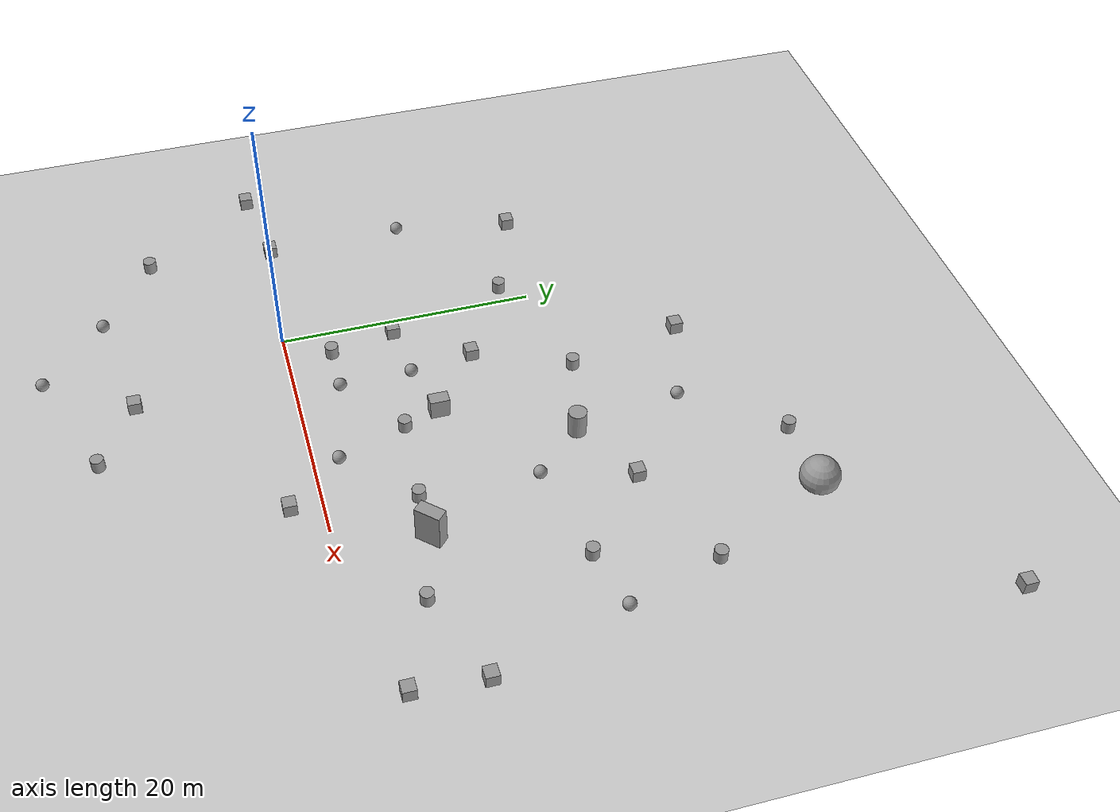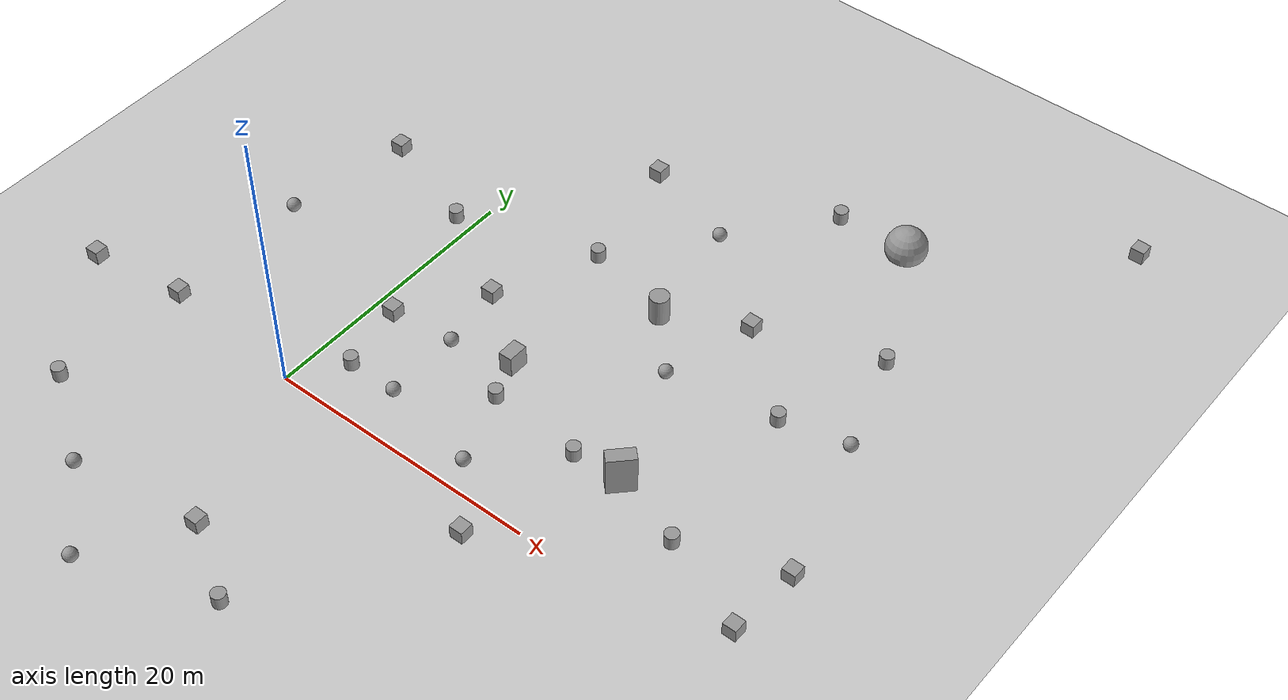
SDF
<sdf version="1.6">
 <world name="default">
  <light name="sun" type="directional">
   <pose>0 0 10 0 -0 0</pose>
   <diffuse>0.8 0.8 0.8 1</diffuse>
   <specular>0.2 0.2 0.2 1</specular>
   <attenuation>
    <range>1000</range>
    <constant>0.9</constant>
    <linear>0.01</linear>
    <quadratic>0.001</quadratic>
   </attenuation>
   <direction>-0.5 0.1 -0.9</direction>
  </light>
  <model name="ground_plane">
   <static>1</static>
   <link name="link">
    <collision name="collision">
     <geometry><plane><normal>0 0 1</normal><size>100 100</size></plane></geometry>
     <surface>
      <contact><collide_bitmask>65535</collide_bitmask></contact>
      <friction><ode><mu>100</mu><mu2>50</mu2></ode></friction>
     </surface>
    </collision>
    <visual name="visual">
     <cast_shadows>0</cast_shadows>
     <geometry><plane><normal>0 0 1</normal><size>100 100</size></plane></geometry>
     <material>
      <script><uri>file://media/materials/scripts/gazebo.material</uri><name>Gazebo/Grey</name></script>
     </material>
    </visual>
   </link>
  </model>
  <physics name="default_physics" default="0" type="ode">
   <ode>
    <solver>
     <type>quick</type>
     <iters>10</iters>
     <sor>1.3</sor>
     <use_dynamic_moi_rescaling>0</use_dynamic_moi_rescaling>
    </solver>
    <constraints>
     <cfm>0</cfm>
     <erp>0.2</erp>
     <contact_max_correcting_vel>100</contact_max_correcting_vel>
     <contact_surface_layer>0.001</contact_surface_layer>
    </constraints>
   </ode>
   <max_step_size>0.002</max_step_size>
   <real_time_factor>1</real_time_factor>
   <real_time_update_rate>500</real_time_update_rate>
  </physics>
  <gravity>0 0 -9.8066</gravity>
  <magnetic_field>6e-06 2.3e-05 -4.2e-05</magnetic_field>
  <atmosphere type="adiabatic"/>
  <scene><ambient>0.4 0.4 0.4 1</ambient><background>0.7 0.7 0.7 1</background><shadows>1</shadows></scene>
  <spherical_coordinates>
   <surface_model>EARTH_WGS84</surface_model>
   <latitude_deg>0</latitude_deg>
   <longitude_deg>0</longitude_deg>
   <elevation>0</elevation>
   <heading_deg>0</heading_deg>
  </spherical_coordinates>
  <model name="unit_cylinder">
   <pose>2.5377 3.50446 0.499981 1e-06 -0 -6.6e-05</pose>
   <link name="link">
    <inertial>
     <mass>1</mass>
     <inertia><ixx>0.145833</ixx><ixy>0</ixy><ixz>0</ixz><iyy>0.145833</iyy><iyz>0</iyz><izz>0.125</izz></inertia>
    </inertial>
    <collision name="collision">
     <geometry><cylinder><radius>0.5</radius><length>1</length></cylinder></geometry>
    </collision>
    <visual name="visual">
     <geometry><cylinder><radius>0.5</radius><length>1</length></cylinder></geometry>
     <material>
      <script><name>Gazebo/Grey</name><uri>file://media/materials/scripts/gazebo.material</uri></script>
     </material>
    </visual>
   </link>
  </model>
  <model name="unit_sphere">
   <pose>6.34845 3.41842 0.5 0 -0 0</pose>
   <link name="link">
    <inertial>
     <mass>1</mass>
     <inertia><ixx>0.1</ixx><ixy>0</ixy><ixz>0</ixz><iyy>0.1</iyy><iyz>0</iyz><izz>0.1</izz></inertia>
    </inertial>
    <collision name="collision"><geometry><sphere><radius>0.5</radius></sphere></geometry></collision>
    <visual name="visual">
     <geometry><sphere><radius>0.5</radius></sphere></geometry>
     <material>
      <script><name>Gazebo/Grey</name><uri>file://media/materials/scripts/gazebo.material</uri></script>
     </material>
    </visual>
   </link>
  </model>
  <model name="unit_box">
   <pose>1.51898 8.55584 0.499985 -2.8e-05 -0 -3e-06</pose>
   <link name="link">
    <inertial>
     <mass>1</mass>
     <inertia>
      <ixx>0.166667</ixx>
      <ixy>0</ixy>
      <ixz>0</ixz>
      <iyy>0.166667</iyy>
      <iyz>0</iyz>
      <izz>0.166667</izz>
     </inertia>
    </inertial>
    <collision name="collision"><geometry><box><size>1 1 1</size></box></geometry></collision>
    <visual name="visual">
     <geometry><box><size>1 1 1</size></box></geometry>
     <material>
      <script><name>Gazebo/Grey</name><uri>file://media/materials/scripts/gazebo.material</uri></script>
     </material>
    </visual>
   </link>
  </model>
  <model name="unit_sphere_0">
   <pose>6.30798 8.98943 0.5 0 -0 0</pose>
   <link name="link">
    <inertial>
     <mass>1</mass>
     <inertia><ixx>0.1</ixx><ixy>0</ixy><ixz>0</ixz><iyy>0.1</iyy><iyz>0</iyz><izz>0.1</izz></inertia>
    </inertial>
    <collision name="collision"><geometry><sphere><radius>0.5</radius></sphere></geometry></collision>
    <visual name="visual">
     <geometry><sphere><radius>0.5</radius></sphere></geometry>
     <material>
      <script><name>Gazebo/Grey</name><uri>file://media/materials/scripts/gazebo.material</uri></script>
     </material>
    </visual>
   </link>
  </model>
  <model name="unit_sphere_1">
   <pose>18.9224 15.6322 0.5 0 -0 0</pose>
   <link name="link">
    <inertial>
     <mass>1</mass>
     <inertia><ixx>0.1</ixx><ixy>0</ixy><ixz>0</ixz><iyy>0.1</iyy><iyz>0</iyz><izz>0.1</izz></inertia>
    </inertial>
    <collision name="collision"><geometry><sphere><radius>0.5</radius></sphere></geometry></collision>
    <visual name="visual">
     <geometry><sphere><radius>0.5</radius></sphere></geometry>
     <material>
      <script><name>Gazebo/Grey</name><uri>file://media/materials/scripts/gazebo.material</uri></script>
     </material>
    </visual>
   </link>
  </model>
  <model name="unit_sphere_2">
   <pose>13.9904 27.8745 0.5 0 -0 0</pose>
   <link name="link">
    <inertial>
     <mass>1</mass>
     <inertia><ixx>0.1</ixx><ixy>0</ixy><ixz>0</ixz><iyy>0.1</iyy><iyz>0</iyz><izz>0.1</izz></inertia>
    </inertial>
    <collision name="collision"><geometry><sphere><radius>0.5</radius></sphere></geometry></collision>
    <visual name="visual">
     <geometry><sphere><radius>0.5</radius></sphere></geometry>
     <material>
      <script><name>Gazebo/Grey</name><uri>file://media/materials/scripts/gazebo.material</uri></script>
     </material>
    </visual>
   </link>
  </model>
  <model name="unit_cylinder_0">
   <pose>29.388 25.4657 0.499981 1e-06 -0 -5.4e-05</pose>
   <link name="link">
    <inertial>
     <mass>1</mass>
     <inertia><ixx>0.145833</ixx><ixy>0</ixy><ixz>0</ixz><iyy>0.145833</iyy><iyz>0</iyz><izz>0.125</izz></inertia>
    </inertial>
    <collision name="collision">
     <geometry><cylinder><radius>0.5</radius><length>1</length></cylinder></geometry>
    </collision>
    <visual name="visual">
     <geometry><cylinder><radius>0.5</radius><length>1</length></cylinder></geometry>
     <material>
      <script><name>Gazebo/Grey</name><uri>file://media/materials/scripts/gazebo.material</uri></script>
     </material>
    </visual>
   </link>
  </model>
  <model name="unit_cylinder_2">
   <pose>11.6863 7.27947 0.499981 1e-06 -0 -5.1e-05</pose>
   <link name="link">
    <inertial>
     <mass>1</mass>
     <inertia><ixx>0.145833</ixx><ixy>0</ixy><ixz>0</ixz><iyy>0.145833</iyy><iyz>0</iyz><izz>0.125</izz></inertia>
    </inertial>
    <collision name="collision">
     <geometry><cylinder><radius>0.5</radius><length>1</length></cylinder></geometry>
    </collision>
    <visual name="visual">
     <geometry><cylinder><radius>0.5</radius><length>1</length></cylinder></geometry>
     <material>
      <script><name>Gazebo/Grey</name><uri>file://media/materials/scripts/gazebo.material</uri></script>
     </material>
    </visual>
   </link>
  </model>
  <model name="unit_box_1">
   <pose>20.7841 22.3736 0.499985 -2.8e-05 -0 -2e-06</pose>
   <link name="link">
    <inertial>
     <mass>1</mass>
     <inertia>
      <ixx>0.166667</ixx>
      <ixy>0</ixy>
      <ixz>0</ixz>
      <iyy>0.166667</iyy>
      <iyz>0</iyz>
      <izz>0.166667</izz>
     </inertia>
    </inertial>
    <collision name="collision"><geometry><box><size>1 1 1</size></box></geometry></collision>
    <visual name="visual">
     <geometry><box><size>1 1 1</size></box></geometry>
     <material>
      <script><name>Gazebo/Grey</name><uri>file://media/materials/scripts/gazebo.material</uri></script>
     </material>
    </visual>
   </link>
  </model>
  <model name="unit_box_2">
   <pose>5.50359 13.924 0.5 -5e-06 -2e-06 -2e-06</pose>
   <link name="link">
    <inertial>
     <mass>1</mass>
     <inertia>
      <ixx>0.166667</ixx>
      <ixy>0</ixy>
      <ixz>0</ixz>
      <iyy>0.166667</iyy>
      <iyz>0</iyz>
      <izz>0.166667</izz>
     </inertia>
    </inertial>
    <collision name="collision"><geometry><box><size>1 1 1</size></box></geometry></collision>
    <visual name="visual">
     <geometry><box><size>1 1 1</size></box></geometry>
     <material>
      <script><name>Gazebo/Grey</name><uri>file://media/materials/scripts/gazebo.material</uri></script>
     </material>
    </visual>
   </link>
  </model>
  <model name="unit_cylinder_3">
   <pose>8.6805 21.221 0.499981 1e-06 0 -4.3e-05</pose>
   <link name="link">
    <inertial>
     <mass>1</mass>
     <inertia><ixx>0.145833</ixx><ixy>0</ixy><ixz>0</ixz><iyy>0.145833</iyy><iyz>0</iyz><izz>0.125</izz></inertia>
    </inertial>
    <collision name="collision">
     <geometry><cylinder><radius>0.5</radius><length>1</length></cylinder></geometry>
    </collision>
    <visual name="visual">
     <geometry><cylinder><radius>0.5</radius><length>1</length></cylinder></geometry>
     <material>
      <script><name>Gazebo/Grey</name><uri>file://media/materials/scripts/gazebo.material</uri></script>
     </material>
    </visual>
   </link>
  </model>
  <model name="unit_box_3">
   <pose>6.82247 30.239 0.5 5e-06 2e-06 -2e-06</pose>
   <link name="link">
    <inertial>
     <mass>1</mass>
     <inertia>
      <ixx>0.166667</ixx>
      <ixy>0</ixy>
      <ixz>0</ixz>
      <iyy>0.166667</iyy>
      <iyz>0</iyz>
      <izz>0.166667</izz>
     </inertia>
    </inertial>
    <collision name="collision"><geometry><box><size>1 1 1</size></box></geometry></collision>
    <visual name="visual">
     <geometry><box><size>1 1 1</size></box></geometry>
     <material>
      <script><name>Gazebo/Grey</name><uri>file://media/materials/scripts/gazebo.material</uri></script>
     </material>
    </visual>
   </link>
  </model>
  <model name="unit_box_4">
   <pose>37.1585 44.5096 0.499985 -2.8e-05 -0 -2e-06</pose>
   <link name="link">
    <inertial>
     <mass>1</mass>
     <inertia>
      <ixx>0.166667</ixx>
      <ixy>0</ixy>
      <ixz>0</ixz>
      <iyy>0.166667</iyy>
      <iyz>0</iyz>
      <izz>0.166667</izz>
     </inertia>
    </inertial>
    <collision name="collision"><geometry><box><size>1 1 1</size></box></geometry></collision>
    <visual name="visual">
     <geometry><box><size>1 1 1</size></box></geometry>
     <material>
      <script><name>Gazebo/Grey</name><uri>file://media/materials/scripts/gazebo.material</uri></script>
     </material>
    </visual>
   </link>
  </model>
  <model name="unit_cylinder_4">
   <pose>19.3102 34.6957 0.499981 1e-06 0 -3.6e-05</pose>
   <link name="link">
    <inertial>
     <mass>1</mass>
     <inertia><ixx>0.145833</ixx><ixy>0</ixy><ixz>0</ixz><iyy>0.145833</iyy><iyz>0</iyz><izz>0.125</izz></inertia>
    </inertial>
    <collision name="collision">
     <geometry><cylinder><radius>0.5</radius><length>1</length></cylinder></geometry>
    </collision>
    <visual name="visual">
     <geometry><cylinder><radius>0.5</radius><length>1</length></cylinder></geometry>
     <material>
      <script><name>Gazebo/Grey</name><uri>file://media/materials/scripts/gazebo.material</uri></script>
     </material>
    </visual>
   </link>
  </model>
  <model name="unit_box_5">
   <pose>34.7207 7.72754 0.5 5e-06 2e-06 -1e-06</pose>
   <link name="link">
    <inertial>
     <mass>1</mass>
     <inertia>
      <ixx>0.166667</ixx>
      <ixy>0</ixy>
      <ixz>0</ixz>
      <iyy>0.166667</iyy>
      <iyz>0</iyz>
      <izz>0.166667</izz>
     </inertia>
    </inertial>
    <collision name="collision"><geometry><box><size>1 1 1</size></box></geometry></collision>
    <visual name="visual">
     <geometry><box><size>1 1 1</size></box></geometry>
     <material>
      <script><name>Gazebo/Grey</name><uri>file://media/materials/scripts/gazebo.material</uri></script>
     </material>
    </visual>
   </link>
  </model>
  <model name="unit_box_6">
   <pose>34.38 2.37669 0.499985 -2.8e-05 -0 -1e-06</pose>
   <link name="link">
    <inertial>
     <mass>1</mass>
     <inertia>
      <ixx>0.166667</ixx>
      <ixy>0</ixy>
      <ixz>0</ixz>
      <iyy>0.166667</iyy>
      <iyz>0</iyz>
      <izz>0.166667</izz>
     </inertia>
    </inertial>
    <collision name="collision"><geometry><box><size>1 1 1</size></box></geometry></collision>
    <visual name="visual">
     <geometry><box><size>1 1 1</size></box></geometry>
     <material>
      <script><name>Gazebo/Grey</name><uri>file://media/materials/scripts/gazebo.material</uri></script>
     </material>
    </visual>
   </link>
  </model>
  <model name="unit_cylinder_5">
   <pose>27.5752 5.21156 0.499981 1e-06 0 -3.1e-05</pose>
   <link name="link">
    <inertial>
     <mass>1</mass>
     <inertia><ixx>0.145833</ixx><ixy>0</ixy><ixz>0</ixz><iyy>0.145833</iyy><iyz>0</iyz><izz>0.125</izz></inertia>
    </inertial>
    <collision name="collision">
     <geometry><cylinder><radius>0.5</radius><length>1</length></cylinder></geometry>
    </collision>
    <visual name="visual">
     <geometry><cylinder><radius>0.5</radius><length>1</length></cylinder></geometry>
     <material>
      <script><name>Gazebo/Grey</name><uri>file://media/materials/scripts/gazebo.material</uri></script>
     </material>
    </visual>
   </link>
  </model>
  <model name="unit_sphere_4">
   <pose>31.7012 18.0979 0.5 0 -0 0</pose>
   <link name="link">
    <inertial>
     <mass>1</mass>
     <inertia><ixx>0.1</ixx><ixy>0</ixy><ixz>0</ixz><iyy>0.1</iyy><iyz>0</iyz><izz>0.1</izz></inertia>
    </inertial>
    <collision name="collision"><geometry><sphere><radius>0.5</radius></sphere></geometry></collision>
    <visual name="visual">
     <geometry><sphere><radius>0.5</radius></sphere></geometry>
     <material>
      <script><name>Gazebo/Grey</name><uri>file://media/materials/scripts/gazebo.material</uri></script>
     </material>
    </visual>
   </link>
  </model>
  <model name="unit_cylinder_6">
   <pose>26.8257 17.065 0.499981 1e-06 -0 -2.7e-05</pose>
   <link name="link">
    <inertial>
     <mass>1</mass>
     <inertia><ixx>0.145833</ixx><ixy>0</ixy><ixz>0</ixz><iyy>0.145833</iyy><iyz>0</iyz><izz>0.125</izz></inertia>
    </inertial>
    <collision name="collision">
     <geometry><cylinder><radius>0.5</radius><length>1</length></cylinder></geometry>
    </collision>
    <visual name="visual">
     <geometry><cylinder><radius>0.5</radius><length>1</length></cylinder></geometry>
     <material>
      <script><name>Gazebo/Grey</name><uri>file://media/materials/scripts/gazebo.material</uri></script>
     </material>
    </visual>
   </link>
  </model>
  <model name="unit_cylinder_7">
   <pose>18.6058 6.73382 0.49998 -1e-06 2e-06 -2.3e-05</pose>
   <link name="link">
    <inertial>
     <mass>1</mass>
     <inertia><ixx>0.145833</ixx><ixy>0</ixy><ixz>0</ixz><iyy>0.145833</iyy><iyz>0</iyz><izz>0.125</izz></inertia>
    </inertial>
    <collision name="collision">
     <geometry><cylinder><radius>0.5</radius><length>1</length></cylinder></geometry>
    </collision>
    <visual name="visual">
     <geometry><cylinder><radius>0.5</radius><length>1</length></cylinder></geometry>
     <material>
      <script><name>Gazebo/Grey</name><uri>file://media/materials/scripts/gazebo.material</uri></script>
     </material>
    </visual>
   </link>
  </model>
  <model name="unit_box_8">
   <pose>17.3372 -2.33531 0.499985 2.8e-05 0 -1e-06</pose>
   <link name="link">
    <inertial>
     <mass>1</mass>
     <inertia>
      <ixx>0.166667</ixx>
      <ixy>0</ixy>
      <ixz>0</ixz>
      <iyy>0.166667</iyy>
      <iyz>0</iyz>
      <izz>0.166667</izz>
     </inertia>
    </inertial>
    <collision name="collision"><geometry><box><size>1 1 1</size></box></geometry></collision>
    <visual name="visual">
     <geometry><box><size>1 1 1</size></box></geometry>
     <material>
      <script><name>Gazebo/Grey</name><uri>file://media/materials/scripts/gazebo.material</uri></script>
     </material>
    </visual>
   </link>
  </model>
  <model name="unit_sphere_5">
   <pose>13.6869 1.91472 0.5 0 -0 0</pose>
   <link name="link">
    <inertial>
     <mass>1</mass>
     <inertia><ixx>0.1</ixx><ixy>0</ixy><ixz>0</ixz><iyy>0.1</iyy><iyz>0</iyz><izz>0.1</izz></inertia>
    </inertial>
    <collision name="collision"><geometry><sphere><radius>0.5</radius></sphere></geometry></collision>
    <visual name="visual">
     <geometry><sphere><radius>0.5</radius></sphere></geometry>
     <material>
      <script><name>Gazebo/Grey</name><uri>file://media/materials/scripts/gazebo.material</uri></script>
     </material>
    </visual>
   </link>
  </model>
  <model name="unit_box_9">
   <pose>-9.14346 20.7941 0.499985 -2.8e-05 -0 -1e-06</pose>
   <link name="link">
    <inertial>
     <mass>1</mass>
     <inertia>
      <ixx>0.166667</ixx>
      <ixy>0</ixy>
      <ixz>0</ixz>
      <iyy>0.166667</iyy>
      <iyz>0</iyz>
      <izz>0.166667</izz>
     </inertia>
    </inertial>
    <collision name="collision"><geometry><box><size>1 1 1</size></box></geometry></collision>
    <visual name="visual">
     <geometry><box><size>1 1 1</size></box></geometry>
     <material>
      <script><name>Gazebo/Grey</name><uri>file://media/materials/scripts/gazebo.material</uri></script>
     </material>
    </visual>
   </link>
  </model>
  <model name="unit_sphere_6">
   <pose>-10.744 11.5674 0.5 0 -0 0</pose>
   <link name="link">
    <inertial>
     <mass>1</mass>
     <inertia><ixx>0.1</ixx><ixy>0</ixy><ixz>0</ixz><iyy>0.1</iyy><iyz>0</iyz><izz>0.1</izz></inertia>
    </inertial>
    <collision name="collision"><geometry><sphere><radius>0.5</radius></sphere></geometry></collision>
    <visual name="visual">
     <geometry><sphere><radius>0.5</radius></sphere></geometry>
     <material>
      <script><name>Gazebo/Grey</name><uri>file://media/materials/scripts/gazebo.material</uri></script>
     </material>
    </visual>
   </link>
  </model>
  <model name="unit_cylinder_8">
   <pose>-1.3918 18.0255 0.49998 -1e-06 2e-06 -1.5e-05</pose>
   <link name="link">
    <inertial>
     <mass>1</mass>
     <inertia><ixx>0.145833</ixx><ixy>0</ixy><ixz>0</ixz><iyy>0.145833</iyy><iyz>0</iyz><izz>0.125</izz></inertia>
    </inertial>
    <collision name="collision">
     <geometry><cylinder><radius>0.5</radius><length>1</length></cylinder></geometry>
    </collision>
    <visual name="visual">
     <geometry><cylinder><radius>0.5</radius><length>1</length></cylinder></geometry>
     <material>
      <script><name>Gazebo/Grey</name><uri>file://media/materials/scripts/gazebo.material</uri></script>
     </material>
    </visual>
   </link>
  </model>
  <model name="unit_box_10">
   <pose>-17.7414 -0.18873 0.5 5e-06 2e-06 0</pose>
   <link name="link">
    <inertial>
     <mass>1</mass>
     <inertia>
      <ixx>0.166667</ixx>
      <ixy>0</ixy>
      <ixz>0</ixz>
      <iyy>0.166667</iyy>
      <iyz>0</iyz>
      <izz>0.166667</izz>
     </inertia>
    </inertial>
    <collision name="collision"><geometry><box><size>1 1 1</size></box></geometry></collision>
    <visual name="visual">
     <geometry><box><size>1 1 1</size></box></geometry>
     <material>
      <script><name>Gazebo/Grey</name><uri>file://media/materials/scripts/gazebo.material</uri></script>
     </material>
    </visual>
   </link>
  </model>
  <model name="unit_cylinder_9">
   <pose>-11.3745 -9.07487 0.499981 1e-06 -0 -1.1e-05</pose>
   <link name="link">
    <inertial>
     <mass>1</mass>
     <inertia><ixx>0.145833</ixx><ixy>0</ixy><ixz>0</ixz><iyy>0.145833</iyy><iyz>0</iyz><izz>0.125</izz></inertia>
    </inertial>
    <collision name="collision">
     <geometry><cylinder><radius>0.5</radius><length>1</length></cylinder></geometry>
    </collision>
    <visual name="visual">
     <geometry><cylinder><radius>0.5</radius><length>1</length></cylinder></geometry>
     <material>
      <script><name>Gazebo/Grey</name><uri>file://media/materials/scripts/gazebo.material</uri></script>
     </material>
    </visual>
   </link>
  </model>
  <model name="unit_box_11">
   <pose>-10.7555 0.806877 0.5 -5e-06 -2e-06 0</pose>
   <link name="link">
    <inertial>
     <mass>1</mass>
     <inertia>
      <ixx>0.166667</ixx>
      <ixy>0</ixy>
      <ixz>0</ixz>
      <iyy>0.166667</iyy>
      <iyz>0</iyz>
      <izz>0.166667</izz>
     </inertia>
    </inertial>
    <collision name="collision"><geometry><box><size>1 1 1</size></box></geometry></collision>
    <visual name="visual">
     <geometry><box><size>1 1 1</size></box></geometry>
     <material>
      <script><name>Gazebo/Grey</name><uri>file://media/materials/scripts/gazebo.material</uri></script>
     </material>
    </visual>
   </link>
  </model>
  <model name="unit_sphere_7">
   <pose>-4.97762 -13.4502 0.5 0 -0 0</pose>
   <link name="link">
    <inertial>
     <mass>1</mass>
     <inertia><ixx>0.1</ixx><ixy>0</ixy><ixz>0</ixz><iyy>0.1</iyy><iyz>0</iyz><izz>0.1</izz></inertia>
    </inertial>
    <collision name="collision"><geometry><sphere><radius>0.5</radius></sphere></geometry></collision>
    <visual name="visual">
     <geometry><sphere><radius>0.5</radius></sphere></geometry>
     <material>
      <script><name>Gazebo/Grey</name><uri>file://media/materials/scripts/gazebo.material</uri></script>
     </material>
    </visual>
   </link>
  </model>
  <model name="unit_cylinder_10">
   <pose>9.67156 -15.0457 0.499981 1e-06 -3e-06 -6e-06</pose>
   <link name="link">
    <inertial>
     <mass>1</mass>
     <inertia><ixx>0.145833</ixx><ixy>0</ixy><ixz>0</ixz><iyy>0.145833</iyy><iyz>0</iyz><izz>0.125</izz></inertia>
    </inertial>
    <collision name="collision">
     <geometry><cylinder><radius>0.5</radius><length>1</length></cylinder></geometry>
    </collision>
    <visual name="visual">
     <geometry><cylinder><radius>0.5</radius><length>1</length></cylinder></geometry>
     <material>
      <script><name>Gazebo/Grey</name><uri>file://media/materials/scripts/gazebo.material</uri></script>
     </material>
    </visual>
   </link>
  </model>
  <model name="unit_box_12">
   <pose>4.40399 -11.8854 0.499985 -2.8e-05 0 0</pose>
   <link name="link">
    <inertial>
     <mass>1</mass>
     <inertia>
      <ixx>0.166667</ixx>
      <ixy>0</ixy>
      <ixz>0</ixz>
      <iyy>0.166667</iyy>
      <iyz>0</iyz>
      <izz>0.166667</izz>
     </inertia>
    </inertial>
    <collision name="collision"><geometry><box><size>1 1 1</size></box></geometry></collision>
    <visual name="visual">
     <geometry><box><size>1 1 1</size></box></geometry>
     <material>
      <script><name>Gazebo/Grey</name><uri>file://media/materials/scripts/gazebo.material</uri></script>
     </material>
    </visual>
   </link>
  </model>
  <model name="unit_sphere_8">
   <pose>0.439722 -18.4491 0.5 0 -0 0</pose>
   <link name="link">
    <inertial>
     <mass>1</mass>
     <inertia><ixx>0.1</ixx><ixy>0</ixy><ixz>0</ixz><iyy>0.1</iyy><iyz>0</iyz><izz>0.1</izz></inertia>
    </inertial>
    <collision name="collision"><geometry><sphere><radius>0.5</radius></sphere></geometry></collision>
    <visual name="visual">
     <geometry><sphere><radius>0.5</radius></sphere></geometry>
     <material>
      <script><name>Gazebo/Grey</name><uri>file://media/materials/scripts/gazebo.material</uri></script>
     </material>
    </visual>
   </link>
  </model>
  <model name="unit_box_0">
   <link name="link">
    <inertial>
     <mass>1</mass>
     <inertia>
      <ixx>0.166667</ixx>
      <ixy>0</ixy>
      <ixz>0</ixz>
      <iyy>0.166667</iyy>
      <iyz>0</iyz>
      <izz>0.166667</izz>
     </inertia>
    </inertial>
    <visual name="visual">
     <geometry><box><size>1 1.5 2</size></box></geometry>
     <material>
      <script><name>Gazebo/Grey</name><uri>file://media/materials/scripts/gazebo.material</uri></script>
      <shader type="pixel"><normal_map>__default__</normal_map></shader>
      <ambient>0.3 0.3 0.3 1</ambient>
      <diffuse>0.7 0.7 0.7 1</diffuse>
      <specular>0.01 0.01 0.01 1</specular>
      <emissive>0 0 0 1</emissive>
     </material>
    </visual>
    <collision name="collision">
     <geometry><box><size>1 1.5 2</size></box></geometry>
     <surface>
      <friction>
       <ode><mu>1</mu><mu2>1</mu2><fdir1>0 0 0</fdir1><slip1>0</slip1><slip2>0</slip2></ode>
       <torsional>
        <coefficient>1</coefficient>
        <patch_radius>0</patch_radius>
        <surface_radius>0</surface_radius>
        <use_patch_radius>1</use_patch_radius>
        <ode><slip>0</slip></ode>
       </torsional>
      </friction>
      <bounce><restitution_coefficient>0</restitution_coefficient><threshold>1e+06</threshold></bounce>
      <contact>
       <collide_without_contact>0</collide_without_contact>
       <collide_without_contact_bitmask>1</collide_without_contact_bitmask>
       <collide_bitmask>1</collide_bitmask>
       <ode>
        <soft_cfm>0</soft_cfm>
        <soft_erp>0.2</soft_erp>
        <kp>1e+13</kp>
        <kd>1</kd>
        <max_vel>0.01</max_vel>
        <min_depth>0</min_depth>
       </ode>
       <bullet>
        <split_impulse>1</split_impulse>
        <split_impulse_penetration_threshold>-0.01</split_impulse_penetration_threshold>
        <soft_cfm>0</soft_cfm>
        <soft_erp>0.2</soft_erp>
        <kp>1e+13</kp>
        <kd>1</kd>
       </bullet>
      </contact>
     </surface>
    </collision>
   </link>
   <static>0</static>
   <pose>10.6624 10.1259 0.5 5e-06 2e-06 -2e-06</pose>
  </model>
  <model name="unit_cylinder_1">
   <link name="link">
    <inertial>
     <mass>1</mass>
     <inertia><ixx>0.145833</ixx><ixy>0</ixy><ixz>0</ixz><iyy>0.145833</iyy><iyz>0</iyz><izz>0.125</izz></inertia>
    </inertial>
    <visual name="visual">
     <geometry><cylinder><radius>0.7</radius><length>3</length></cylinder></geometry>
     <material>
      <script><name>Gazebo/Grey</name><uri>file://media/materials/scripts/gazebo.material</uri></script>
      <shader type="pixel"><normal_map>__default__</normal_map></shader>
      <ambient>0.3 0.3 0.3 1</ambient>
      <diffuse>0.7 0.7 0.7 1</diffuse>
      <specular>0.01 0.01 0.01 1</specular>
      <emissive>0 0 0 1</emissive>
     </material>
    </visual>
    <collision name="collision">
     <geometry><cylinder><radius>0.7</radius><length>3</length></cylinder></geometry>
     <surface>
      <friction>
       <ode><mu>1</mu><mu2>1</mu2><fdir1>0 0 0</fdir1><slip1>0</slip1><slip2>0</slip2></ode>
       <torsional>
        <coefficient>1</coefficient>
        <patch_radius>0</patch_radius>
        <surface_radius>0</surface_radius>
        <use_patch_radius>1</use_patch_radius>
        <ode><slip>0</slip></ode>
       </torsional>
      </friction>
      <bounce><restitution_coefficient>0</restitution_coefficient><threshold>1e+06</threshold></bounce>
      <contact>
       <collide_without_contact>0</collide_without_contact>
       <collide_without_contact_bitmask>1</collide_without_contact_bitmask>
       <collide_bitmask>1</collide_bitmask>
       <ode>
        <soft_cfm>0</soft_cfm>
        <soft_erp>0.2</soft_erp>
        <kp>1e+13</kp>
        <kd>1</kd>
        <max_vel>0.01</max_vel>
        <min_depth>0</min_depth>
       </ode>
       <bullet>
        <split_impulse>1</split_impulse>
        <split_impulse_penetration_threshold>-0.01</split_impulse_penetration_threshold>
        <soft_cfm>0</soft_cfm>
        <soft_erp>0.2</soft_erp>
        <kp>1e+13</kp>
        <kd>1</kd>
       </bullet>
      </contact>
     </surface>
    </collision>
   </link>
   <static>0</static>
   <pose>15.2943 19.5342 0.499981 1e-06 -0 -5.3e-05</pose>
  </model>
  <model name="unit_sphere_3">
   <link name="link">
    <inertial>
     <mass>1</mass>
     <inertia><ixx>0.1</ixx><ixy>0</ixy><ixz>0</ixz><iyy>0.1</iyy><iyz>0</iyz><izz>0.1</izz></inertia>
    </inertial>
    <visual name="visual">
     <geometry><sphere><radius>1.5</radius></sphere></geometry>
     <material>
      <script><name>Gazebo/Grey</name><uri>file://media/materials/scripts/gazebo.material</uri></script>
      <shader type="pixel"><normal_map>__default__</normal_map></shader>
      <ambient>0.3 0.3 0.3 1</ambient>
      <diffuse>0.7 0.7 0.7 1</diffuse>
      <specular>0.01 0.01 0.01 1</specular>
      <emissive>0 0 0 1</emissive>
     </material>
    </visual>
    <collision name="collision">
     <geometry><sphere><radius>1.5</radius></sphere></geometry>
     <surface>
      <friction>
       <ode><mu>1</mu><mu2>1</mu2><fdir1>0 0 0</fdir1><slip1>0</slip1><slip2>0</slip2></ode>
       <torsional>
        <coefficient>1</coefficient>
        <patch_radius>0</patch_radius>
        <surface_radius>0</surface_radius>
        <use_patch_radius>1</use_patch_radius>
        <ode><slip>0</slip></ode>
       </torsional>
      </friction>
      <bounce><restitution_coefficient>0</restitution_coefficient><threshold>1e+06</threshold></bounce>
      <contact>
       <collide_without_contact>0</collide_without_contact>
       <collide_without_contact_bitmask>1</collide_without_contact_bitmask>
       <collide_bitmask>1</collide_bitmask>
       <ode>
        <soft_cfm>0</soft_cfm>
        <soft_erp>0.2</soft_erp>
        <kp>1e+13</kp>
        <kd>1</kd>
        <max_vel>0.01</max_vel>
        <min_depth>0</min_depth>
       </ode>
       <bullet>
        <split_impulse>1</split_impulse>
        <split_impulse_penetration_threshold>-0.01</split_impulse_penetration_threshold>
        <soft_cfm>0</soft_cfm>
        <soft_erp>0.2</soft_erp>
        <kp>1e+13</kp>
        <kd>1</kd>
       </bullet>
      </contact>
     </surface>
    </collision>
   </link>
   <static>0</static>
   <pose>24.5689 34.9402 0.5 0 -0 0</pose>
  </model>
  <model name="unit_box_7">
   <link name="link">
    <pose>0 0 1 0 -0 0.8</pose>
    <inertial>
     <mass>1</mass>
     <inertia>
      <ixx>0.166667</ixx>
      <ixy>0</ixy>
      <ixz>0</ixz>
      <iyy>0.166667</iyy>
      <iyz>0</iyz>
      <izz>0.166667</izz>
     </inertia>
    </inertial>
    <visual name="visual">
     <geometry><box><size>2 1 3</size></box></geometry>
     <material>
      <script><name>Gazebo/Grey</name><uri>file://media/materials/scripts/gazebo.material</uri></script>
      <shader type="pixel"><normal_map>__default__</normal_map></shader>
      <ambient>0.3 0.3 0.3 1</ambient>
      <diffuse>0.7 0.7 0.7 1</diffuse>
      <specular>0.01 0.01 0.01 1</specular>
      <emissive>0 0 0 1</emissive>
     </material>
    </visual>
    <collision name="collision">
     <geometry><box><size>2 1 3</size></box></geometry>
     <surface>
      <friction>
       <ode><mu>1</mu><mu2>1</mu2><fdir1>0 0 0</fdir1><slip1>0</slip1><slip2>0</slip2></ode>
       <torsional>
        <coefficient>1</coefficient>
        <patch_radius>0</patch_radius>
        <surface_radius>0</surface_radius>
        <use_patch_radius>1</use_patch_radius>
        <ode><slip>0</slip></ode>
       </torsional>
      </friction>
      <bounce><restitution_coefficient>0</restitution_coefficient><threshold>1e+06</threshold></bounce>
      <contact>
       <collide_without_contact>0</collide_without_contact>
       <collide_without_contact_bitmask>1</collide_without_contact_bitmask>
       <collide_bitmask>1</collide_bitmask>
       <ode>
        <soft_cfm>0</soft_cfm>
        <soft_erp>0.2</soft_erp>
        <kp>1e+13</kp>
        <kd>1</kd>
        <max_vel>0.01</max_vel>
        <min_depth>0</min_depth>
       </ode>
       <bullet>
        <split_impulse>1</split_impulse>
        <split_impulse_penetration_threshold>-0.01</split_impulse_penetration_threshold>
        <soft_cfm>0</soft_cfm>
        <soft_erp>0.2</soft_erp>
        <kp>1e+13</kp>
        <kd>1</kd>
       </bullet>
      </contact>
     </surface>
    </collision>
   </link>
   <static>0</static>
   <pose>22.3889 6.7306 0.499985 -2.8e-05 -0 -1e-06</pose>
  </model>
 </world>
</sdf>
